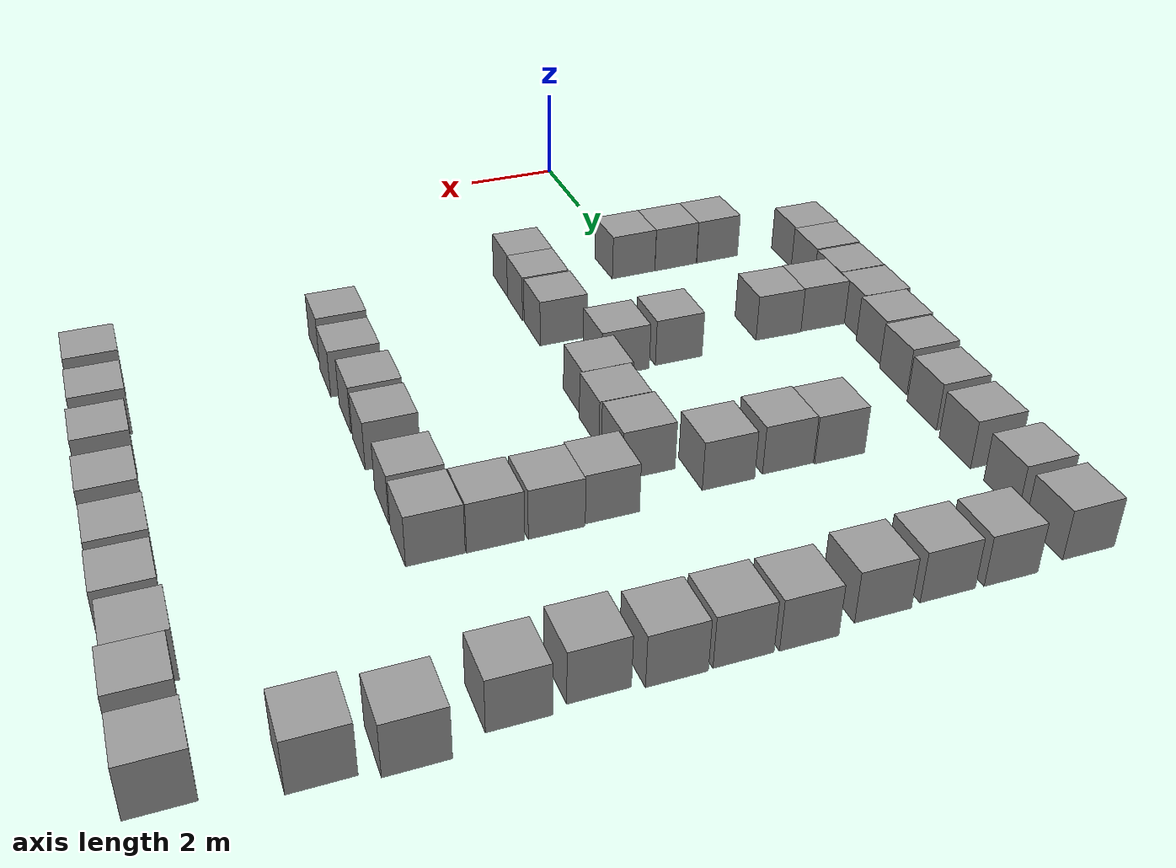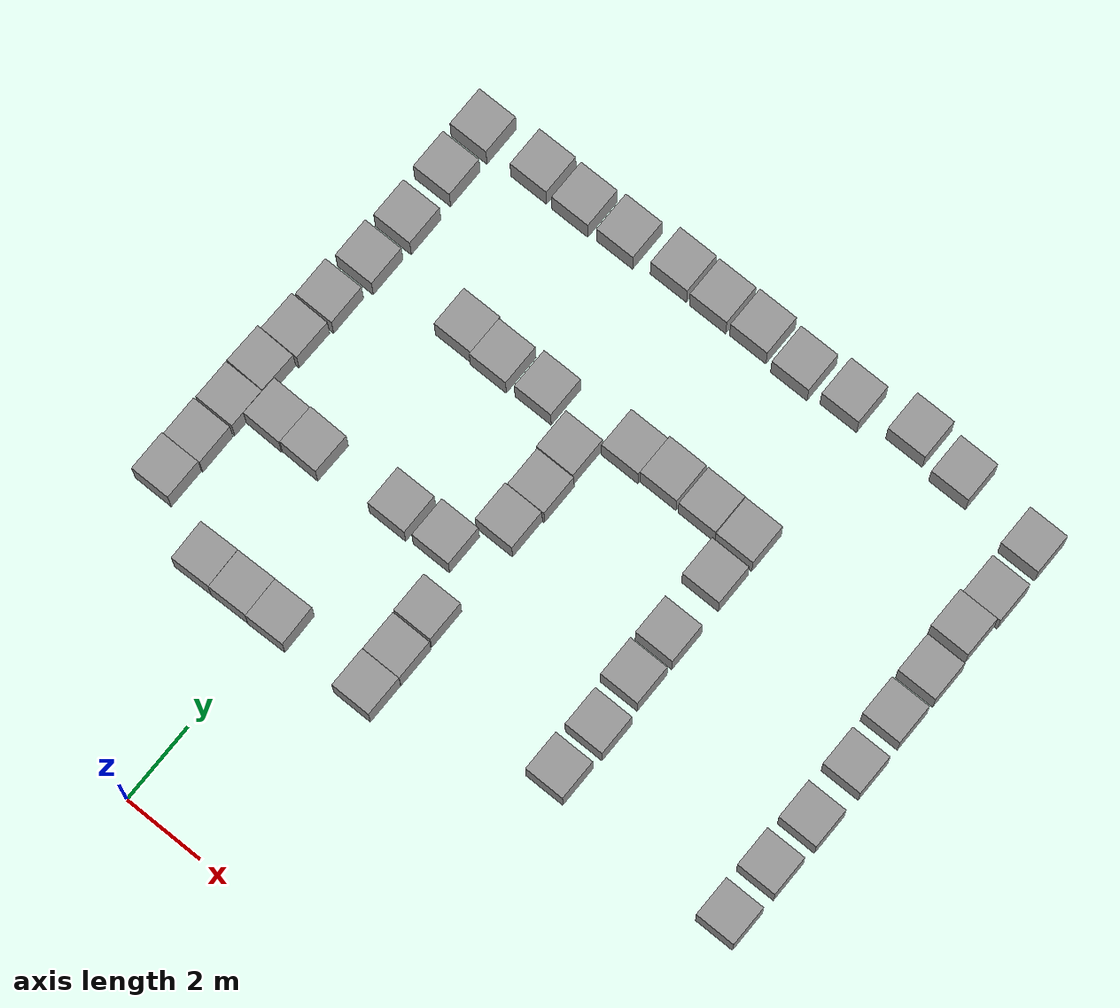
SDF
<sdf version="1.6">
 <world name="default">
  <model name="unit_box_0_19">
   <pose>-1.96159 4.95479 0.49907 -0.0001 -0 0.025121</pose>
   <link name="link">
    <inertial>
     <mass>1</mass>
     <inertia>
      <ixx>0.166667</ixx>
      <ixy>0</ixy>
      <ixz>0</ixz>
      <iyy>0.166667</iyy>
      <iyz>0</iyz>
      <izz>0.166667</izz>
     </inertia>
    </inertial>
    <collision name="collision"><geometry><box><size>1 1 1</size></box></geometry></collision>
    <visual name="visual">
     <geometry><box><size>1 1 1</size></box></geometry>
     <material>
      <script><name>Gazebo/Grey</name><uri>file://media/materials/scripts/gazebo.material</uri></script>
     </material>
    </visual>
   </link>
  </model>
  <model name="unit_box_0_20">
   <pose>-0.959822 4.97444 0.49907 -0.0001 -0 0.021531</pose>
   <link name="link">
    <inertial>
     <mass>1</mass>
     <inertia>
      <ixx>0.166667</ixx>
      <ixy>0</ixy>
      <ixz>0</ixz>
      <iyy>0.166667</iyy>
      <iyz>0</iyz>
      <izz>0.166667</izz>
     </inertia>
    </inertial>
    <collision name="collision"><geometry><box><size>1 1 1</size></box></geometry></collision>
    <visual name="visual">
     <geometry><box><size>1 1 1</size></box></geometry>
     <material>
      <script><name>Gazebo/Grey</name><uri>file://media/materials/scripts/gazebo.material</uri></script>
     </material>
    </visual>
   </link>
  </model>
  <model name="unit_box_0_23">
   <pose>0.040569 4.9896 0.49967 -0.00066 -0 0.020714</pose>
   <link name="link">
    <inertial>
     <mass>1</mass>
     <inertia>
      <ixx>0.166667</ixx>
      <ixy>0</ixy>
      <ixz>0</ixz>
      <iyy>0.166667</iyy>
      <iyz>0</iyz>
      <izz>0.166667</izz>
     </inertia>
    </inertial>
    <collision name="collision"><geometry><box><size>1 1 1</size></box></geometry></collision>
    <visual name="visual">
     <geometry><box><size>1 1 1</size></box></geometry>
     <material>
      <script><name>Gazebo/Grey</name><uri>file://media/materials/scripts/gazebo.material</uri></script>
     </material>
    </visual>
   </link>
  </model>
  <model name="unit_box_0_30">
   <pose>0.500605 8.46428 0.499798 0.000404 1e-06 0</pose>
   <link name="link">
    <inertial>
     <mass>1</mass>
     <inertia>
      <ixx>0.166667</ixx>
      <ixy>0</ixy>
      <ixz>0</ixz>
      <iyy>0.166667</iyy>
      <iyz>0</iyz>
      <izz>0.166667</izz>
     </inertia>
    </inertial>
    <collision name="collision"><geometry><box><size>1 1 1</size></box></geometry></collision>
    <visual name="visual">
     <geometry><box><size>1 1 1</size></box></geometry>
     <material>
      <script><name>Gazebo/Grey</name><uri>file://media/materials/scripts/gazebo.material</uri></script>
     </material>
    </visual>
   </link>
  </model>
  <model name="unit_box_0_33">
   <pose>-3.48262 12.1839 0.499798 -0.000404 1e-06 1e-06</pose>
   <link name="link">
    <inertial>
     <mass>1</mass>
     <inertia>
      <ixx>0.166667</ixx>
      <ixy>0</ixy>
      <ixz>0</ixz>
      <iyy>0.166667</iyy>
      <iyz>0</iyz>
      <izz>0.166667</izz>
     </inertia>
    </inertial>
    <collision name="collision"><geometry><box><size>1 1 1</size></box></geometry></collision>
    <visual name="visual">
     <geometry><box><size>1 1 1</size></box></geometry>
     <material>
      <script><name>Gazebo/Grey</name><uri>file://media/materials/scripts/gazebo.material</uri></script>
     </material>
    </visual>
   </link>
  </model>
  <model name="unit_box_0_34">
   <pose>-3.84483 5.89053 0.49967 0 0.00066 0.000679</pose>
   <link name="link">
    <inertial>
     <mass>1</mass>
     <inertia>
      <ixx>0.166667</ixx>
      <ixy>0</ixy>
      <ixz>0</ixz>
      <iyy>0.166667</iyy>
      <iyz>0</iyz>
      <izz>0.166667</izz>
     </inertia>
    </inertial>
    <collision name="collision"><geometry><box><size>1 1 1</size></box></geometry></collision>
    <visual name="visual">
     <geometry><box><size>1 1 1</size></box></geometry>
     <material>
      <script><name>Gazebo/Grey</name><uri>file://media/materials/scripts/gazebo.material</uri></script>
     </material>
    </visual>
   </link>
  </model>
  <model name="unit_box_0_34_clone">
   <pose>-3.80881 6.89097 0.5 0 -0 9.8e-05</pose>
   <link name="link">
    <inertial>
     <mass>1</mass>
     <inertia>
      <ixx>0.166667</ixx>
      <ixy>0</ixy>
      <ixz>0</ixz>
      <iyy>0.166667</iyy>
      <iyz>0</iyz>
      <izz>0.166667</izz>
     </inertia>
    </inertial>
    <collision name="collision"><geometry><box><size>1 1 1</size></box></geometry></collision>
    <visual name="visual">
     <geometry><box><size>1 1 1</size></box></geometry>
     <material>
      <script><name>Gazebo/Grey</name><uri>file://media/materials/scripts/gazebo.material</uri></script>
     </material>
    </visual>
   </link>
  </model>
  <model name="unit_box_0_34_clone_0">
   <pose>-3.78755 7.93029 0.499798 0.000404 0 -0.003906</pose>
   <link name="link">
    <inertial>
     <mass>1</mass>
     <inertia>
      <ixx>0.166667</ixx>
      <ixy>0</ixy>
      <ixz>0</ixz>
      <iyy>0.166667</iyy>
      <iyz>0</iyz>
      <izz>0.166667</izz>
     </inertia>
    </inertial>
    <collision name="collision"><geometry><box><size>1 1 1</size></box></geometry></collision>
    <visual name="visual">
     <geometry><box><size>1 1 1</size></box></geometry>
     <material>
      <script><name>Gazebo/Grey</name><uri>file://media/materials/scripts/gazebo.material</uri></script>
     </material>
    </visual>
   </link>
  </model>
  <model name="unit_box_0_34_clone_1">
   <pose>-2.77833 8.29419 0.49967 0.00066 -0 -0.018577</pose>
   <link name="link">
    <inertial>
     <mass>1</mass>
     <inertia>
      <ixx>0.166667</ixx>
      <ixy>0</ixy>
      <ixz>0</ixz>
      <iyy>0.166667</iyy>
      <iyz>0</iyz>
      <izz>0.166667</izz>
     </inertia>
    </inertial>
    <collision name="collision"><geometry><box><size>1 1 1</size></box></geometry></collision>
    <visual name="visual">
     <geometry><box><size>1 1 1</size></box></geometry>
     <material>
      <script><name>Gazebo/Grey</name><uri>file://media/materials/scripts/gazebo.material</uri></script>
     </material>
    </visual>
   </link>
  </model>
  <model name="unit_box_0_34_clone_0_clone">
   <pose>-3.77888 8.94276 0.49912 0 0 -0.025372</pose>
   <link name="link">
    <inertial>
     <mass>1</mass>
     <inertia>
      <ixx>0.166667</ixx>
      <ixy>0</ixy>
      <ixz>0</ixz>
      <iyy>0.166667</iyy>
      <iyz>0</iyz>
      <izz>0.166667</izz>
     </inertia>
    </inertial>
    <collision name="collision"><geometry><box><size>1 1 1</size></box></geometry></collision>
    <visual name="visual">
     <geometry><box><size>1 1 1</size></box></geometry>
     <material>
      <script><name>Gazebo/Grey</name><uri>file://media/materials/scripts/gazebo.material</uri></script>
     </material>
    </visual>
   </link>
  </model>
  <model name="unit_box_0_34_clone_0_clone_0">
   <pose>-3.67164 9.94701 0.49967 -0.00066 -0 -0.016817</pose>
   <link name="link">
    <inertial>
     <mass>1</mass>
     <inertia>
      <ixx>0.166667</ixx>
      <ixy>0</ixy>
      <ixz>0</ixz>
      <iyy>0.166667</iyy>
      <iyz>0</iyz>
      <izz>0.166667</izz>
     </inertia>
    </inertial>
    <collision name="collision"><geometry><box><size>1 1 1</size></box></geometry></collision>
    <visual name="visual">
     <geometry><box><size>1 1 1</size></box></geometry>
     <material>
      <script><name>Gazebo/Grey</name><uri>file://media/materials/scripts/gazebo.material</uri></script>
     </material>
    </visual>
   </link>
  </model>
  <model name="unit_box_0_34_clone_0_clone_1">
   <pose>-3.59427 10.9907 0.499798 -0.000404 -1e-06 1e-06</pose>
   <link name="link">
    <inertial>
     <mass>1</mass>
     <inertia>
      <ixx>0.166667</ixx>
      <ixy>0</ixy>
      <ixz>0</ixz>
      <iyy>0.166667</iyy>
      <iyz>0</iyz>
      <izz>0.166667</izz>
     </inertia>
    </inertial>
    <collision name="collision"><geometry><box><size>1 1 1</size></box></geometry></collision>
    <visual name="visual">
     <geometry><box><size>1 1 1</size></box></geometry>
     <material>
      <script><name>Gazebo/Grey</name><uri>file://media/materials/scripts/gazebo.material</uri></script>
     </material>
    </visual>
   </link>
  </model>
  <model name="unit_box_0_34_clone_0_clone_3">
   <pose>1.65614 8.52704 0.499798 -0.000404 1e-06 1e-06</pose>
   <link name="link">
    <inertial>
     <mass>1</mass>
     <inertia>
      <ixx>0.166667</ixx>
      <ixy>0</ixy>
      <ixz>0</ixz>
      <iyy>0.166667</iyy>
      <iyz>0</iyz>
      <izz>0.166667</izz>
     </inertia>
    </inertial>
    <collision name="collision"><geometry><box><size>1 1 1</size></box></geometry></collision>
    <visual name="visual">
     <geometry><box><size>1 1 1</size></box></geometry>
     <material>
      <script><name>Gazebo/Grey</name><uri>file://media/materials/scripts/gazebo.material</uri></script>
     </material>
    </visual>
   </link>
  </model>
  <model name="unit_box_0_34_clone_0_clone_4">
   <pose>2.40454 4.99714 0.499798 0.000404 -0 -0.000155</pose>
   <link name="link">
    <inertial>
     <mass>1</mass>
     <inertia>
      <ixx>0.166667</ixx>
      <ixy>0</ixy>
      <ixz>0</ixz>
      <iyy>0.166667</iyy>
      <iyz>0</iyz>
      <izz>0.166667</izz>
     </inertia>
    </inertial>
    <collision name="collision"><geometry><box><size>1 1 1</size></box></geometry></collision>
    <visual name="visual">
     <geometry><box><size>1 1 1</size></box></geometry>
     <material>
      <script><name>Gazebo/Grey</name><uri>file://media/materials/scripts/gazebo.material</uri></script>
     </material>
    </visual>
   </link>
  </model>
  <model name="unit_box_0_34_clone_0_clone_5">
   <pose>2.41027 5.99947 0.499798 0.000404 1e-06 -0.001291</pose>
   <link name="link">
    <inertial>
     <mass>1</mass>
     <inertia>
      <ixx>0.166667</ixx>
      <ixy>0</ixy>
      <ixz>0</ixz>
      <iyy>0.166667</iyy>
      <iyz>0</iyz>
      <izz>0.166667</izz>
     </inertia>
    </inertial>
    <collision name="collision"><geometry><box><size>1 1 1</size></box></geometry></collision>
    <visual name="visual">
     <geometry><box><size>1 1 1</size></box></geometry>
     <material>
      <script><name>Gazebo/Grey</name><uri>file://media/materials/scripts/gazebo.material</uri></script>
     </material>
    </visual>
   </link>
  </model>
  <model name="unit_box_0_34_clone_0_clone_6">
   <pose>2.39059 7.04162 0.499798 -0.000404 1e-06 1e-06</pose>
   <link name="link">
    <inertial>
     <mass>1</mass>
     <inertia>
      <ixx>0.166667</ixx>
      <ixy>0</ixy>
      <ixz>0</ixz>
      <iyy>0.166667</iyy>
      <iyz>0</iyz>
      <izz>0.166667</izz>
     </inertia>
    </inertial>
    <collision name="collision"><geometry><box><size>1 1 1</size></box></geometry></collision>
    <visual name="visual">
     <geometry><box><size>1 1 1</size></box></geometry>
     <material>
      <script><name>Gazebo/Grey</name><uri>file://media/materials/scripts/gazebo.material</uri></script>
     </material>
    </visual>
   </link>
  </model>
  <model name="unit_box_0_34_clone_0_clone_7">
   <pose>2.47381 9.63829 0.49907 0 -0.0001 -0.000459</pose>
   <link name="link">
    <inertial>
     <mass>1</mass>
     <inertia>
      <ixx>0.166667</ixx>
      <ixy>0</ixy>
      <ixz>0</ixz>
      <iyy>0.166667</iyy>
      <iyz>0</iyz>
      <izz>0.166667</izz>
     </inertia>
    </inertial>
    <collision name="collision"><geometry><box><size>1 1 1</size></box></geometry></collision>
    <visual name="visual">
     <geometry><box><size>1 1 1</size></box></geometry>
     <material>
      <script><name>Gazebo/Grey</name><uri>file://media/materials/scripts/gazebo.material</uri></script>
     </material>
    </visual>
   </link>
  </model>
  <model name="unit_box_0_34_clone_0_clone_8">
   <pose>2.52689 10.6415 0.499798 -0.000404 0 -0.000669</pose>
   <link name="link">
    <inertial>
     <mass>1</mass>
     <inertia>
      <ixx>0.166667</ixx>
      <ixy>0</ixy>
      <ixz>0</ixz>
      <iyy>0.166667</iyy>
      <iyz>0</iyz>
      <izz>0.166667</izz>
     </inertia>
    </inertial>
    <collision name="collision"><geometry><box><size>1 1 1</size></box></geometry></collision>
    <visual name="visual">
     <geometry><box><size>1 1 1</size></box></geometry>
     <material>
      <script><name>Gazebo/Grey</name><uri>file://media/materials/scripts/gazebo.material</uri></script>
     </material>
    </visual>
   </link>
  </model>
  <model name="unit_box_0_34_clone_0_clone_9">
   <pose>2.48371 11.6566 0.499798 -0.000404 1e-06 1e-06</pose>
   <link name="link">
    <inertial>
     <mass>1</mass>
     <inertia>
      <ixx>0.166667</ixx>
      <ixy>0</ixy>
      <ixz>0</ixz>
      <iyy>0.166667</iyy>
      <iyz>0</iyz>
      <izz>0.166667</izz>
     </inertia>
    </inertial>
    <collision name="collision"><geometry><box><size>1 1 1</size></box></geometry></collision>
    <visual name="visual">
     <geometry><box><size>1 1 1</size></box></geometry>
     <material>
      <script><name>Gazebo/Grey</name><uri>file://media/materials/scripts/gazebo.material</uri></script>
     </material>
    </visual>
   </link>
  </model>
  <model name="unit_box_0_34_clone_0_clone_10">
   <pose>0.106327 12.3129 0.499798 0.000404 1e-06 1e-05</pose>
   <link name="link">
    <inertial>
     <mass>1</mass>
     <inertia>
      <ixx>0.166667</ixx>
      <ixy>0</ixy>
      <ixz>0</ixz>
      <iyy>0.166667</iyy>
      <iyz>0</iyz>
      <izz>0.166667</izz>
     </inertia>
    </inertial>
    <collision name="collision"><geometry><box><size>1 1 1</size></box></geometry></collision>
    <visual name="visual">
     <geometry><box><size>1 1 1</size></box></geometry>
     <material>
      <script><name>Gazebo/Grey</name><uri>file://media/materials/scripts/gazebo.material</uri></script>
     </material>
    </visual>
   </link>
  </model>
  <model name="unit_box_0_34_clone_0_clone_11">
   <pose>1.29109 12.3791 0.499798 0.000404 1e-06 5e-06</pose>
   <link name="link">
    <inertial>
     <mass>1</mass>
     <inertia>
      <ixx>0.166667</ixx>
      <ixy>0</ixy>
      <ixz>0</ixz>
      <iyy>0.166667</iyy>
      <iyz>0</iyz>
      <izz>0.166667</izz>
     </inertia>
    </inertial>
    <collision name="collision"><geometry><box><size>1 1 1</size></box></geometry></collision>
    <visual name="visual">
     <geometry><box><size>1 1 1</size></box></geometry>
     <material>
      <script><name>Gazebo/Grey</name><uri>file://media/materials/scripts/gazebo.material</uri></script>
     </material>
    </visual>
   </link>
  </model>
  <model name="unit_box_0_33_clone">
   <pose>-0.89374 12.353 0.499798 0.000404 1e-06 0</pose>
   <link name="link">
    <inertial>
     <mass>1</mass>
     <inertia>
      <ixx>0.166667</ixx>
      <ixy>0</ixy>
      <ixz>0</ixz>
      <iyy>0.166667</iyy>
      <iyz>0</iyz>
      <izz>0.166667</izz>
     </inertia>
    </inertial>
    <collision name="collision"><geometry><box><size>1 1 1</size></box></geometry></collision>
    <visual name="visual">
     <geometry><box><size>1 1 1</size></box></geometry>
     <material>
      <script><name>Gazebo/Grey</name><uri>file://media/materials/scripts/gazebo.material</uri></script>
     </material>
    </visual>
   </link>
  </model>
  <model name="unit_box_0_34_clone_0_clone_11_clone">
   <pose>3.53343 12.5549 0.499798 -0.000404 1e-06 0.000489</pose>
   <link name="link">
    <inertial>
     <mass>1</mass>
     <inertia>
      <ixx>0.166667</ixx>
      <ixy>0</ixy>
      <ixz>0</ixz>
      <iyy>0.166667</iyy>
      <iyz>0</iyz>
      <izz>0.166667</izz>
     </inertia>
    </inertial>
    <collision name="collision"><geometry><box><size>1 1 1</size></box></geometry></collision>
    <visual name="visual">
     <geometry><box><size>1 1 1</size></box></geometry>
     <material>
      <script><name>Gazebo/Grey</name><uri>file://media/materials/scripts/gazebo.material</uri></script>
     </material>
    </visual>
   </link>
  </model>
  <model name="unit_box_0_34_clone_0_clone_11_clone_0">
   <pose>4.53348 12.6157 0.499798 0.000404 -0 0.000402</pose>
   <link name="link">
    <inertial>
     <mass>1</mass>
     <inertia>
      <ixx>0.166667</ixx>
      <ixy>0</ixy>
      <ixz>0</ixz>
      <iyy>0.166667</iyy>
      <iyz>0</iyz>
      <izz>0.166667</izz>
     </inertia>
    </inertial>
    <collision name="collision"><geometry><box><size>1 1 1</size></box></geometry></collision>
    <visual name="visual">
     <geometry><box><size>1 1 1</size></box></geometry>
     <material>
      <script><name>Gazebo/Grey</name><uri>file://media/materials/scripts/gazebo.material</uri></script>
     </material>
    </visual>
   </link>
  </model>
  <model name="unit_box_0_34_clone_0_clone_11_clone_1">
   <pose>5.59209 12.6088 0.499798 0.000404 1e-06 1e-06</pose>
   <link name="link">
    <inertial>
     <mass>1</mass>
     <inertia>
      <ixx>0.166667</ixx>
      <ixy>0</ixy>
      <ixz>0</ixz>
      <iyy>0.166667</iyy>
      <iyz>0</iyz>
      <izz>0.166667</izz>
     </inertia>
    </inertial>
    <collision name="collision"><geometry><box><size>1 1 1</size></box></geometry></collision>
    <visual name="visual">
     <geometry><box><size>1 1 1</size></box></geometry>
     <material>
      <script><name>Gazebo/Grey</name><uri>file://media/materials/scripts/gazebo.material</uri></script>
     </material>
    </visual>
   </link>
  </model>
  <model name="unit_box_0_34_clone_0_clone_11_clone_2">
   <pose>6.6091 12.6021 0.499798 0.000404 1e-06 1e-06</pose>
   <link name="link">
    <inertial>
     <mass>1</mass>
     <inertia>
      <ixx>0.166667</ixx>
      <ixy>0</ixy>
      <ixz>0</ixz>
      <iyy>0.166667</iyy>
      <iyz>0</iyz>
      <izz>0.166667</izz>
     </inertia>
    </inertial>
    <collision name="collision"><geometry><box><size>1 1 1</size></box></geometry></collision>
    <visual name="visual">
     <geometry><box><size>1 1 1</size></box></geometry>
     <material>
      <script><name>Gazebo/Grey</name><uri>file://media/materials/scripts/gazebo.material</uri></script>
     </material>
    </visual>
   </link>
  </model>
  <model name="unit_box_0_34_clone_0_clone_11_clone_3">
   <pose>6.60251 11.4819 0.499798 0.000404 1e-06 1e-06</pose>
   <link name="link">
    <inertial>
     <mass>1</mass>
     <inertia>
      <ixx>0.166667</ixx>
      <ixy>0</ixy>
      <ixz>0</ixz>
      <iyy>0.166667</iyy>
      <iyz>0</iyz>
      <izz>0.166667</izz>
     </inertia>
    </inertial>
    <collision name="collision"><geometry><box><size>1 1 1</size></box></geometry></collision>
    <visual name="visual">
     <geometry><box><size>1 1 1</size></box></geometry>
     <material>
      <script><name>Gazebo/Grey</name><uri>file://media/materials/scripts/gazebo.material</uri></script>
     </material>
    </visual>
   </link>
  </model>
  <model name="unit_box_0_34_clone_0_clone_11_clone_4">
   <pose>6.62713 9.88718 0.499798 0.000404 1e-06 1e-06</pose>
   <link name="link">
    <inertial>
     <mass>1</mass>
     <inertia>
      <ixx>0.166667</ixx>
      <ixy>0</ixy>
      <ixz>0</ixz>
      <iyy>0.166667</iyy>
      <iyz>0</iyz>
      <izz>0.166667</izz>
     </inertia>
    </inertial>
    <collision name="collision"><geometry><box><size>1 1 1</size></box></geometry></collision>
    <visual name="visual">
     <geometry><box><size>1 1 1</size></box></geometry>
     <material>
      <script><name>Gazebo/Grey</name><uri>file://media/materials/scripts/gazebo.material</uri></script>
     </material>
    </visual>
   </link>
  </model>
  <model name="unit_box_0_34_clone_0_clone_11_clone_5">
   <pose>6.62038 8.73386 0.499798 0.000404 1e-06 1e-06</pose>
   <link name="link">
    <inertial>
     <mass>1</mass>
     <inertia>
      <ixx>0.166667</ixx>
      <ixy>0</ixy>
      <ixz>0</ixz>
      <iyy>0.166667</iyy>
      <iyz>0</iyz>
      <izz>0.166667</izz>
     </inertia>
    </inertial>
    <collision name="collision"><geometry><box><size>1 1 1</size></box></geometry></collision>
    <visual name="visual">
     <geometry><box><size>1 1 1</size></box></geometry>
     <material>
      <script><name>Gazebo/Grey</name><uri>file://media/materials/scripts/gazebo.material</uri></script>
     </material>
    </visual>
   </link>
  </model>
  <model name="unit_box_0_34_clone_0_clone_11_clone_6">
   <pose>6.71449 7.44455 0.499798 0.000404 1e-06 1e-06</pose>
   <link name="link">
    <inertial>
     <mass>1</mass>
     <inertia>
      <ixx>0.166667</ixx>
      <ixy>0</ixy>
      <ixz>0</ixz>
      <iyy>0.166667</iyy>
      <iyz>0</iyz>
      <izz>0.166667</izz>
     </inertia>
    </inertial>
    <collision name="collision"><geometry><box><size>1 1 1</size></box></geometry></collision>
    <visual name="visual">
     <geometry><box><size>1 1 1</size></box></geometry>
     <material>
      <script><name>Gazebo/Grey</name><uri>file://media/materials/scripts/gazebo.material</uri></script>
     </material>
    </visual>
   </link>
  </model>
  <model name="unit_box_0_34_clone_0_clone_11_clone_7">
   <pose>6.67328 6.19035 0.499798 0.000404 1e-06 1e-06</pose>
   <link name="link">
    <inertial>
     <mass>1</mass>
     <inertia>
      <ixx>0.166667</ixx>
      <ixy>0</ixy>
      <ixz>0</ixz>
      <iyy>0.166667</iyy>
      <iyz>0</iyz>
      <izz>0.166667</izz>
     </inertia>
    </inertial>
    <collision name="collision"><geometry><box><size>1 1 1</size></box></geometry></collision>
    <visual name="visual">
     <geometry><box><size>1 1 1</size></box></geometry>
     <material>
      <script><name>Gazebo/Grey</name><uri>file://media/materials/scripts/gazebo.material</uri></script>
     </material>
    </visual>
   </link>
  </model>
  <model name="unit_box_0_34_clone_0_clone_11_clone_35">
   <pose>-1.778 8.29777 0.49967 0.00066 0 -0.018503</pose>
   <link name="link">
    <inertial>
     <mass>1</mass>
     <inertia>
      <ixx>0.166667</ixx>
      <ixy>0</ixy>
      <ixz>0</ixz>
      <iyy>0.166667</iyy>
      <iyz>0</iyz>
      <izz>0.166667</izz>
     </inertia>
    </inertial>
    <collision name="collision"><geometry><box><size>1 1 1</size></box></geometry></collision>
    <visual name="visual">
     <geometry><box><size>1 1 1</size></box></geometry>
     <material>
      <script><name>Gazebo/Grey</name><uri>file://media/materials/scripts/gazebo.material</uri></script>
     </material>
    </visual>
   </link>
  </model>
  <model name="unit_box_0_clone_3">
   <pose>11.3612 6.06184 0.49907 0.0001 -0 0</pose>
   <link name="link">
    <inertial>
     <mass>1</mass>
     <inertia>
      <ixx>0.166667</ixx>
      <ixy>0</ixy>
      <ixz>0</ixz>
      <iyy>0.166667</iyy>
      <iyz>0</iyz>
      <izz>0.166667</izz>
     </inertia>
    </inertial>
    <collision name="collision"><geometry><box><size>1 1 1</size></box></geometry></collision>
    <visual name="visual">
     <geometry><box><size>1 1 1</size></box></geometry>
     <material>
      <script><name>Gazebo/Grey</name><uri>file://media/materials/scripts/gazebo.material</uri></script>
     </material>
    </visual>
   </link>
  </model>
  <model name="unit_box_0_clone_4">
   <pose>11.3695 7.41699 0.499798 0.000404 -1e-06 1e-06</pose>
   <link name="link">
    <inertial>
     <mass>1</mass>
     <inertia>
      <ixx>0.166667</ixx>
      <ixy>0</ixy>
      <ixz>0</ixz>
      <iyy>0.166667</iyy>
      <iyz>0</iyz>
      <izz>0.166667</izz>
     </inertia>
    </inertial>
    <collision name="collision"><geometry><box><size>1 1 1</size></box></geometry></collision>
    <visual name="visual">
     <geometry><box><size>1 1 1</size></box></geometry>
     <material>
      <script><name>Gazebo/Grey</name><uri>file://media/materials/scripts/gazebo.material</uri></script>
     </material>
    </visual>
   </link>
  </model>
  <model name="unit_box_0_clone_5">
   <pose>11.4118 8.7388 0.49907 0.0001 -0 0</pose>
   <link name="link">
    <inertial>
     <mass>1</mass>
     <inertia>
      <ixx>0.166667</ixx>
      <ixy>0</ixy>
      <ixz>0</ixz>
      <iyy>0.166667</iyy>
      <iyz>0</iyz>
      <izz>0.166667</izz>
     </inertia>
    </inertial>
    <collision name="collision"><geometry><box><size>1 1 1</size></box></geometry></collision>
    <visual name="visual">
     <geometry><box><size>1 1 1</size></box></geometry>
     <material>
      <script><name>Gazebo/Grey</name><uri>file://media/materials/scripts/gazebo.material</uri></script>
     </material>
    </visual>
   </link>
  </model>
  <model name="unit_box_0_clone_6">
   <pose>11.4209 10.1962 0.499798 0.000404 1e-06 0</pose>
   <link name="link">
    <inertial>
     <mass>1</mass>
     <inertia>
      <ixx>0.166667</ixx>
      <ixy>0</ixy>
      <ixz>0</ixz>
      <iyy>0.166667</iyy>
      <iyz>0</iyz>
      <izz>0.166667</izz>
     </inertia>
    </inertial>
    <collision name="collision"><geometry><box><size>1 1 1</size></box></geometry></collision>
    <visual name="visual">
     <geometry><box><size>1 1 1</size></box></geometry>
     <material>
      <script><name>Gazebo/Grey</name><uri>file://media/materials/scripts/gazebo.material</uri></script>
     </material>
    </visual>
   </link>
  </model>
  <model name="unit_box_0_clone_7">
   <pose>11.3953 11.5529 0.49907 0.0001 -0 0</pose>
   <link name="link">
    <inertial>
     <mass>1</mass>
     <inertia>
      <ixx>0.166667</ixx>
      <ixy>0</ixy>
      <ixz>0</ixz>
      <iyy>0.166667</iyy>
      <iyz>0</iyz>
      <izz>0.166667</izz>
     </inertia>
    </inertial>
    <collision name="collision"><geometry><box><size>1 1 1</size></box></geometry></collision>
    <visual name="visual">
     <geometry><box><size>1 1 1</size></box></geometry>
     <material>
      <script><name>Gazebo/Grey</name><uri>file://media/materials/scripts/gazebo.material</uri></script>
     </material>
    </visual>
   </link>
  </model>
  <model name="unit_box_0_clone_8">
   <pose>11.4029 12.7399 0.499798 0.000404 -1e-06 1e-06</pose>
   <link name="link">
    <inertial>
     <mass>1</mass>
     <inertia>
      <ixx>0.166667</ixx>
      <ixy>0</ixy>
      <ixz>0</ixz>
      <iyy>0.166667</iyy>
      <iyz>0</iyz>
      <izz>0.166667</izz>
     </inertia>
    </inertial>
    <collision name="collision"><geometry><box><size>1 1 1</size></box></geometry></collision>
    <visual name="visual">
     <geometry><box><size>1 1 1</size></box></geometry>
     <material>
      <script><name>Gazebo/Grey</name><uri>file://media/materials/scripts/gazebo.material</uri></script>
     </material>
    </visual>
   </link>
  </model>
  <model name="unit_box_0_clone_9">
   <pose>11.4175 14.9194 0.49907 0 -0.0001 -0.001547</pose>
   <link name="link">
    <inertial>
     <mass>1</mass>
     <inertia>
      <ixx>0.166667</ixx>
      <ixy>0</ixy>
      <ixz>0</ixz>
      <iyy>0.166667</iyy>
      <iyz>0</iyz>
      <izz>0.166667</izz>
     </inertia>
    </inertial>
    <collision name="collision"><geometry><box><size>1 1 1</size></box></geometry></collision>
    <visual name="visual">
     <geometry><box><size>1 1 1</size></box></geometry>
     <material>
      <script><name>Gazebo/Grey</name><uri>file://media/materials/scripts/gazebo.material</uri></script>
     </material>
    </visual>
   </link>
  </model>
  <model name="unit_box_0_clone_10">
   <pose>11.3423 13.9195 0.49907 0 0.0001 -0.001523</pose>
   <link name="link">
    <inertial>
     <mass>1</mass>
     <inertia>
      <ixx>0.166667</ixx>
      <ixy>0</ixy>
      <ixz>0</ixz>
      <iyy>0.166667</iyy>
      <iyz>0</iyz>
      <izz>0.166667</izz>
     </inertia>
    </inertial>
    <collision name="collision"><geometry><box><size>1 1 1</size></box></geometry></collision>
    <visual name="visual">
     <geometry><box><size>1 1 1</size></box></geometry>
     <material>
      <script><name>Gazebo/Grey</name><uri>file://media/materials/scripts/gazebo.material</uri></script>
     </material>
    </visual>
   </link>
  </model>
  <model name="unit_box_0_clone_11">
   <pose>11.3908 16.235 0.49907 0.0001 -0 0</pose>
   <link name="link">
    <inertial>
     <mass>1</mass>
     <inertia>
      <ixx>0.166667</ixx>
      <ixy>0</ixy>
      <ixz>0</ixz>
      <iyy>0.166667</iyy>
      <iyz>0</iyz>
      <izz>0.166667</izz>
     </inertia>
    </inertial>
    <collision name="collision"><geometry><box><size>1 1 1</size></box></geometry></collision>
    <visual name="visual">
     <geometry><box><size>1 1 1</size></box></geometry>
     <material>
      <script><name>Gazebo/Grey</name><uri>file://media/materials/scripts/gazebo.material</uri></script>
     </material>
    </visual>
   </link>
  </model>
  <model name="unit_box_0_clone_12">
   <pose>-3.41752 13.3821 0.49907 0 -0.0001 0.001542</pose>
   <link name="link">
    <inertial>
     <mass>1</mass>
     <inertia>
      <ixx>0.166667</ixx>
      <ixy>0</ixy>
      <ixz>0</ixz>
      <iyy>0.166667</iyy>
      <iyz>0</iyz>
      <izz>0.166667</izz>
     </inertia>
    </inertial>
    <collision name="collision"><geometry><box><size>1 1 1</size></box></geometry></collision>
    <visual name="visual">
     <geometry><box><size>1 1 1</size></box></geometry>
     <material>
      <script><name>Gazebo/Grey</name><uri>file://media/materials/scripts/gazebo.material</uri></script>
     </material>
    </visual>
   </link>
  </model>
  <model name="unit_box_0_clone_13">
   <pose>-3.44448 14.7424 0.499798 -0.000404 1e-06 0.001534</pose>
   <link name="link">
    <inertial>
     <mass>1</mass>
     <inertia>
      <ixx>0.166667</ixx>
      <ixy>0</ixy>
      <ixz>0</ixz>
      <iyy>0.166667</iyy>
      <iyz>0</iyz>
      <izz>0.166667</izz>
     </inertia>
    </inertial>
    <collision name="collision"><geometry><box><size>1 1 1</size></box></geometry></collision>
    <visual name="visual">
     <geometry><box><size>1 1 1</size></box></geometry>
     <material>
      <script><name>Gazebo/Grey</name><uri>file://media/materials/scripts/gazebo.material</uri></script>
     </material>
    </visual>
   </link>
  </model>
  <model name="unit_box_0_clone_14">
   <pose>-3.43874 15.9664 0.499798 -0.000404 -0 0.001538</pose>
   <link name="link">
    <inertial>
     <mass>1</mass>
     <inertia>
      <ixx>0.166667</ixx>
      <ixy>0</ixy>
      <ixz>0</ixz>
      <iyy>0.166667</iyy>
      <iyz>0</iyz>
      <izz>0.166667</izz>
     </inertia>
    </inertial>
    <collision name="collision"><geometry><box><size>1 1 1</size></box></geometry></collision>
    <visual name="visual">
     <geometry><box><size>1 1 1</size></box></geometry>
     <material>
      <script><name>Gazebo/Grey</name><uri>file://media/materials/scripts/gazebo.material</uri></script>
     </material>
    </visual>
   </link>
  </model>
  <model name="unit_box_0_clone_15">
   <pose>-1.87412 16.091 0.499798 -0.000404 1e-06 0.001535</pose>
   <link name="link">
    <inertial>
     <mass>1</mass>
     <inertia>
      <ixx>0.166667</ixx>
      <ixy>0</ixy>
      <ixz>0</ixz>
      <iyy>0.166667</iyy>
      <iyz>0</iyz>
      <izz>0.166667</izz>
     </inertia>
    </inertial>
    <collision name="collision"><geometry><box><size>1 1 1</size></box></geometry></collision>
    <visual name="visual">
     <geometry><box><size>1 1 1</size></box></geometry>
     <material>
      <script><name>Gazebo/Grey</name><uri>file://media/materials/scripts/gazebo.material</uri></script>
     </material>
    </visual>
   </link>
  </model>
  <model name="unit_box_0_clone_16">
   <pose>-0.718991 16.0831 0.499798 -0.000404 1e-06 0.001536</pose>
   <link name="link">
    <inertial>
     <mass>1</mass>
     <inertia>
      <ixx>0.166667</ixx>
      <ixy>0</ixy>
      <ixz>0</ixz>
      <iyy>0.166667</iyy>
      <iyz>0</iyz>
      <izz>0.166667</izz>
     </inertia>
    </inertial>
    <collision name="collision"><geometry><box><size>1 1 1</size></box></geometry></collision>
    <visual name="visual">
     <geometry><box><size>1 1 1</size></box></geometry>
     <material>
      <script><name>Gazebo/Grey</name><uri>file://media/materials/scripts/gazebo.material</uri></script>
     </material>
    </visual>
   </link>
  </model>
  <model name="unit_box_0_clone_17">
   <pose>0.470138 16.1428 0.499798 -0.000404 1e-06 0.001537</pose>
   <link name="link">
    <inertial>
     <mass>1</mass>
     <inertia>
      <ixx>0.166667</ixx>
      <ixy>0</ixy>
      <ixz>0</ixz>
      <iyy>0.166667</iyy>
      <iyz>0</iyz>
      <izz>0.166667</izz>
     </inertia>
    </inertial>
    <collision name="collision"><geometry><box><size>1 1 1</size></box></geometry></collision>
    <visual name="visual">
     <geometry><box><size>1 1 1</size></box></geometry>
     <material>
      <script><name>Gazebo/Grey</name><uri>file://media/materials/scripts/gazebo.material</uri></script>
     </material>
    </visual>
   </link>
  </model>
  <model name="unit_box_0_clone_18">
   <pose>1.82931 16.3028 0.499798 -0.000404 1e-06 0.001536</pose>
   <link name="link">
    <inertial>
     <mass>1</mass>
     <inertia>
      <ixx>0.166667</ixx>
      <ixy>0</ixy>
      <ixz>0</ixz>
      <iyy>0.166667</iyy>
      <iyz>0</iyz>
      <izz>0.166667</izz>
     </inertia>
    </inertial>
    <collision name="collision"><geometry><box><size>1 1 1</size></box></geometry></collision>
    <visual name="visual">
     <geometry><box><size>1 1 1</size></box></geometry>
     <material>
      <script><name>Gazebo/Grey</name><uri>file://media/materials/scripts/gazebo.material</uri></script>
     </material>
    </visual>
   </link>
  </model>
  <model name="unit_box_0_clone_19">
   <pose>2.91547 16.2953 0.499798 -0.000404 1e-06 0.001538</pose>
   <link name="link">
    <inertial>
     <mass>1</mass>
     <inertia>
      <ixx>0.166667</ixx>
      <ixy>0</ixy>
      <ixz>0</ixz>
      <iyy>0.166667</iyy>
      <iyz>0</iyz>
      <izz>0.166667</izz>
     </inertia>
    </inertial>
    <collision name="collision"><geometry><box><size>1 1 1</size></box></geometry></collision>
    <visual name="visual">
     <geometry><box><size>1 1 1</size></box></geometry>
     <material>
      <script><name>Gazebo/Grey</name><uri>file://media/materials/scripts/gazebo.material</uri></script>
     </material>
    </visual>
   </link>
  </model>
  <model name="unit_box_0_clone_20">
   <pose>4.00141 16.3212 0.499798 -0.000404 -0 0.001541</pose>
   <link name="link">
    <inertial>
     <mass>1</mass>
     <inertia>
      <ixx>0.166667</ixx>
      <ixy>0</ixy>
      <ixz>0</ixz>
      <iyy>0.166667</iyy>
      <iyz>0</iyz>
      <izz>0.166667</izz>
     </inertia>
    </inertial>
    <collision name="collision"><geometry><box><size>1 1 1</size></box></geometry></collision>
    <visual name="visual">
     <geometry><box><size>1 1 1</size></box></geometry>
     <material>
      <script><name>Gazebo/Grey</name><uri>file://media/materials/scripts/gazebo.material</uri></script>
     </material>
    </visual>
   </link>
  </model>
  <model name="unit_box_0_clone_21">
   <pose>5.18884 16.245 0.5 0 -0 0.001557</pose>
   <link name="link">
    <inertial>
     <mass>1</mass>
     <inertia>
      <ixx>0.166667</ixx>
      <ixy>0</ixy>
      <ixz>0</ixz>
      <iyy>0.166667</iyy>
      <iyz>0</iyz>
      <izz>0.166667</izz>
     </inertia>
    </inertial>
    <collision name="collision"><geometry><box><size>1 1 1</size></box></geometry></collision>
    <visual name="visual">
     <geometry><box><size>1 1 1</size></box></geometry>
     <material>
      <script><name>Gazebo/Grey</name><uri>file://media/materials/scripts/gazebo.material</uri></script>
     </material>
    </visual>
   </link>
  </model>
  <model name="unit_box_0_clone_22">
   <pose>6.44423 16.372 0.499798 -0.000404 1e-06 0.00154</pose>
   <link name="link">
    <inertial>
     <mass>1</mass>
     <inertia>
      <ixx>0.166667</ixx>
      <ixy>0</ixy>
      <ixz>0</ixz>
      <iyy>0.166667</iyy>
      <iyz>0</iyz>
      <izz>0.166667</izz>
     </inertia>
    </inertial>
    <collision name="collision"><geometry><box><size>1 1 1</size></box></geometry></collision>
    <visual name="visual">
     <geometry><box><size>1 1 1</size></box></geometry>
     <material>
      <script><name>Gazebo/Grey</name><uri>file://media/materials/scripts/gazebo.material</uri></script>
     </material>
    </visual>
   </link>
  </model>
  <model name="unit_box_0_clone_23">
   <pose>8.00544 16.6664 0.499798 -0.000404 1e-06 0.001541</pose>
   <link name="link">
    <inertial>
     <mass>1</mass>
     <inertia>
      <ixx>0.166667</ixx>
      <ixy>0</ixy>
      <ixz>0</ixz>
      <iyy>0.166667</iyy>
      <iyz>0</iyz>
      <izz>0.166667</izz>
     </inertia>
    </inertial>
    <collision name="collision"><geometry><box><size>1 1 1</size></box></geometry></collision>
    <visual name="visual">
     <geometry><box><size>1 1 1</size></box></geometry>
     <material>
      <script><name>Gazebo/Grey</name><uri>file://media/materials/scripts/gazebo.material</uri></script>
     </material>
    </visual>
   </link>
  </model>
  <model name="unit_box_0_clone_24">
   <pose>9.29205 16.5213 0.5 0 -0 0.001528</pose>
   <link name="link">
    <inertial>
     <mass>1</mass>
     <inertia>
      <ixx>0.166667</ixx>
      <ixy>0</ixy>
      <ixz>0</ixz>
      <iyy>0.166667</iyy>
      <iyz>0</iyz>
      <izz>0.166667</izz>
     </inertia>
    </inertial>
    <collision name="collision"><geometry><box><size>1 1 1</size></box></geometry></collision>
    <visual name="visual">
     <geometry><box><size>1 1 1</size></box></geometry>
     <material>
      <script><name>Gazebo/Grey</name><uri>file://media/materials/scripts/gazebo.material</uri></script>
     </material>
    </visual>
   </link>
  </model>
 </world>
</sdf>
